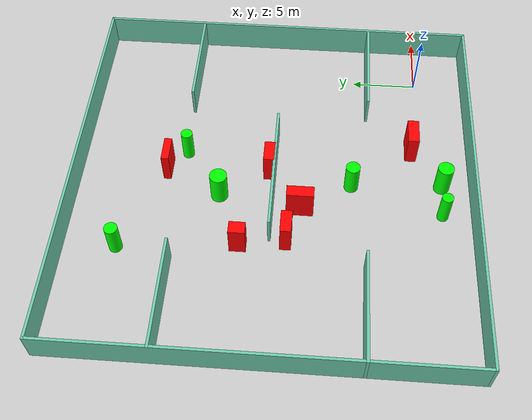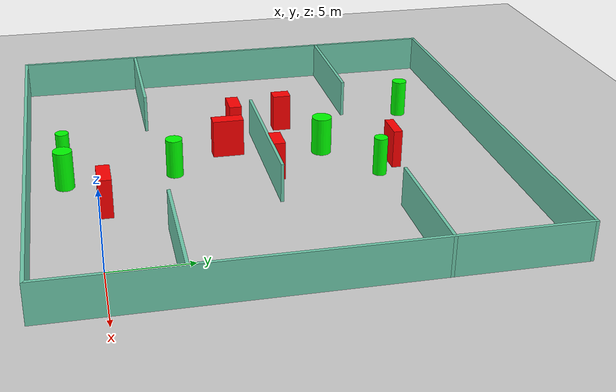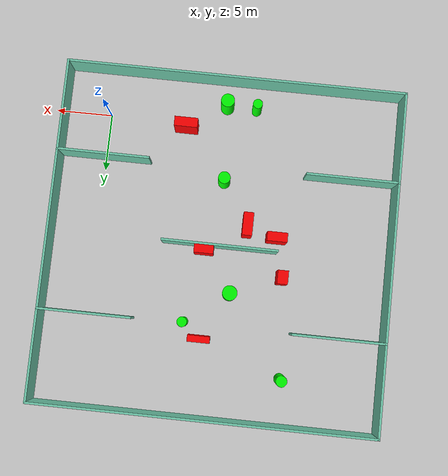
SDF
<sdf version="1.7">
 <world name="default">
  <light name="sun" type="directional">
   <pose>0 0 10 0 -0 0</pose>
   <diffuse>0.8 0.8 0.8 1</diffuse>
   <specular>0.2 0.2 0.2 1</specular>
   <attenuation>
    <range>1000</range>
    <constant>0.9</constant>
    <linear>0.01</linear>
    <quadratic>0.001</quadratic>
   </attenuation>
   <direction>-0.5 0.1 -0.9</direction>
   <spot><inner_angle>0</inner_angle><outer_angle>0</outer_angle><falloff>0</falloff></spot>
  </light>
  <model name="ground_plane">
   <static>1</static>
   <link name="link">
    <collision name="collision">
     <geometry><plane><normal>0 0 1</normal><size>100 100</size></plane></geometry>
     <surface>
      <contact><collide_bitmask>65535</collide_bitmask></contact>
      <friction><ode><mu>100</mu><mu2>50</mu2></ode></friction>
     </surface>
    </collision>
    <visual name="visual">
     <cast_shadows>0</cast_shadows>
     <geometry><plane><normal>0 0 1</normal><size>100 100</size></plane></geometry>
     <material>
      <script><uri>file://media/materials/scripts/gazebo.material</uri><name>Gazebo/Grey</name></script>
     </material>
    </visual>
   </link>
  </model>
  <gravity>0 0 -9.8</gravity>
  <magnetic_field>6e-06 2.3e-05 -4.2e-05</magnetic_field>
  <atmosphere type="adiabatic"/>
  <physics type="ode">
   <max_step_size>0.001</max_step_size>
   <real_time_factor>1</real_time_factor>
   <real_time_update_rate>1000</real_time_update_rate>
  </physics>
  <scene><ambient>0.4 0.4 0.4 1</ambient><background>0.7 0.7 0.7 1</background><shadows>1</shadows></scene>
  <spherical_coordinates>
   <surface_model>EARTH_WGS84</surface_model>
   <latitude_deg>0</latitude_deg>
   <longitude_deg>0</longitude_deg>
   <elevation>0</elevation>
   <heading_deg>0</heading_deg>
  </spherical_coordinates>
  <model name="my_base_walls">
   <link name="Wall_10">
    <collision name="Wall_10_Collision">
     <geometry><box><size>8.2 0.2 2.5</size></box></geometry>
     <pose>0 0 1.25 0 -0 0</pose>
    </collision>
    <visual name="Wall_10_Visual">
     <pose>0 0 1.25 0 -0 0</pose>
     <geometry><box><size>8.2 0.2 2.5</size></box></geometry>
     <material>
      <script><uri>file://media/materials/scripts/gazebo.material</uri><name>Gazebo/Grey</name></script>
      <ambient>0.435294 0.796078 0.67451 1</ambient>
     </material>
     <meta><layer>0</layer></meta>
    </visual>
    <pose>-11 -7 0 0 -0 0</pose>
   </link>
   <link name="Wall_12">
    <collision name="Wall_12_Collision">
     <geometry><box><size>8.2 0.2 2.5</size></box></geometry>
     <pose>0 0 1.25 0 -0 0</pose>
    </collision>
    <visual name="Wall_12_Visual">
     <pose>0 0 1.25 0 -0 0</pose>
     <geometry><box><size>8.2 0.2 2.5</size></box></geometry>
     <material>
      <script><uri>file://media/materials/scripts/gazebo.material</uri><name>Gazebo/Grey</name></script>
      <ambient>0.435294 0.796078 0.67451 1</ambient>
     </material>
     <meta><layer>0</layer></meta>
    </visual>
    <pose>-11 7 0 0 -0 0</pose>
   </link>
   <link name="Wall_14">
    <collision name="Wall_14_Collision">
     <geometry><box><size>8.2 0.2 2.5</size></box></geometry>
     <pose>0 0 1.25 0 -0 0</pose>
    </collision>
    <visual name="Wall_14_Visual">
     <pose>0 0 1.25 0 -0 0</pose>
     <geometry><box><size>8.2 0.2 2.5</size></box></geometry>
     <material>
      <script><uri>file://media/materials/scripts/gazebo.material</uri><name>Gazebo/Grey</name></script>
      <ambient>0.435294 0.796078 0.67451 1</ambient>
     </material>
     <meta><layer>0</layer></meta>
    </visual>
    <pose>11 7 0 0 -0 3.14159</pose>
   </link>
   <link name="Wall_16">
    <collision name="Wall_16_Collision">
     <geometry><box><size>10.2 0.2 2.5</size></box></geometry>
     <pose>0 0 1.25 0 -0 0</pose>
    </collision>
    <visual name="Wall_16_Visual">
     <pose>0 0 1.25 0 -0 0</pose>
     <geometry><box><size>10.2 0.2 2.5</size></box></geometry>
     <material>
      <script><uri>file://media/materials/scripts/gazebo.material</uri><name>Gazebo/Grey</name></script>
      <ambient>0.435294 0.796078 0.67451 1</ambient>
     </material>
     <meta><layer>0</layer></meta>
    </visual>
    <pose>0 0 0 0 -0 3.14159</pose>
   </link>
   <link name="Wall_2">
    <collision name="Wall_2_Collision">
     <geometry><box><size>30.2 0.2 2.5</size></box></geometry>
     <pose>0 0 1.25 0 -0 0</pose>
    </collision>
    <visual name="Wall_2_Visual">
     <pose>0 0 1.25 0 -0 0</pose>
     <geometry><box><size>30.2 0.2 2.5</size></box></geometry>
     <material>
      <script><uri>file://media/materials/scripts/gazebo.material</uri><name>Gazebo/Grey</name></script>
      <ambient>0.435294 0.796078 0.67451 1</ambient>
     </material>
     <meta><layer>0</layer></meta>
    </visual>
    <pose>0 -15 0 0 -0 3.14159</pose>
   </link>
   <link name="Wall_3">
    <collision name="Wall_3_Collision">
     <geometry><box><size>30.2 0.2 2.5</size></box></geometry>
     <pose>0 0 1.25 0 -0 0</pose>
    </collision>
    <visual name="Wall_3_Visual">
     <pose>0 0 1.25 0 -0 0</pose>
     <geometry><box><size>30.2 0.2 2.5</size></box></geometry>
     <material>
      <script><uri>file://media/materials/scripts/gazebo.material</uri><name>Gazebo/Grey</name></script>
      <ambient>0.435294 0.796078 0.67451 1</ambient>
     </material>
     <meta><layer>0</layer></meta>
    </visual>
    <pose>-15 0 0 0 -0 1.5708</pose>
   </link>
   <link name="Wall_4">
    <collision name="Wall_4_Collision">
     <geometry><box><size>30.2 0.2 2.5</size></box></geometry>
     <pose>0 0 1.25 0 -0 0</pose>
    </collision>
    <visual name="Wall_4_Visual">
     <pose>0 0 1.25 0 -0 0</pose>
     <geometry><box><size>30.2 0.2 2.5</size></box></geometry>
     <material>
      <script><uri>file://media/materials/scripts/gazebo.material</uri><name>Gazebo/Grey</name></script>
      <ambient>0.435294 0.796078 0.67451 1</ambient>
     </material>
     <meta><layer>0</layer></meta>
    </visual>
    <pose>0 15 0 0 -0 0</pose>
   </link>
   <link name="Wall_6">
    <collision name="Wall_6_Collision">
     <geometry><box><size>30.2 0.2 2.5</size></box></geometry>
     <pose>0 0 1.25 0 -0 0</pose>
    </collision>
    <visual name="Wall_6_Visual">
     <pose>0 0 1.25 0 -0 0</pose>
     <geometry><box><size>30.2 0.2 2.5</size></box></geometry>
     <material>
      <script><uri>file://media/materials/scripts/gazebo.material</uri><name>Gazebo/Grey</name></script>
      <ambient>0.435294 0.796078 0.67451 1</ambient>
     </material>
     <meta><layer>0</layer></meta>
    </visual>
    <pose>15 0 0 0 -0 1.5708</pose>
   </link>
   <link name="Wall_8">
    <collision name="Wall_8_Collision">
     <geometry><box><size>8.2 0.2 2.5</size></box></geometry>
     <pose>0 0 1.25 0 -0 0</pose>
    </collision>
    <visual name="Wall_8_Visual">
     <pose>0 0 1.25 0 -0 0</pose>
     <geometry><box><size>8.2 0.2 2.5</size></box></geometry>
     <material>
      <script><uri>file://media/materials/scripts/gazebo.material</uri><name>Gazebo/Grey</name></script>
      <ambient>0.435294 0.796078 0.67451 1</ambient>
     </material>
     <meta><layer>0</layer></meta>
    </visual>
    <pose>11 -7 0 0 -0 3.14159</pose>
   </link>
   <static>1</static>
   <pose>-11 11 0 0 -0 0</pose>
  </model>
  <model name="cylinder1">
   <static>1</static>
   <link name="link">
    <inertial>
     <mass>1</mass>
     <inertia><ixx>0.5</ixx><ixy>0</ixy><ixz>0</ixz><iyy>0.5</iyy><iyz>0</iyz><izz>1</izz></inertia>
    </inertial>
    <collision name="collision">
     <geometry><cylinder><radius>0.5330046118302146</radius><length>2.5</length></cylinder></geometry>
    </collision>
    <visual name="visual">
     <geometry><cylinder><radius>0.5330046118302146</radius><length>2.5</length></cylinder></geometry>
     <material>
      <ambient>0 1 0 1</ambient>
      <diffuse>0 1 0 1</diffuse>
      <specular>0.1 0.1 0.1 1</specular>
      <emissive>0 0 0 0</emissive>
     </material>
    </visual>
   </link>
   <pose>-10.80874158409543 5.10599310241011 1.25 0 0 0</pose>
  </model>
  <model name="cylinder2">
   <static>1</static>
   <link name="link">
    <inertial>
     <mass>1</mass>
     <inertia><ixx>0.5</ixx><ixy>0</ixy><ixz>0</ixz><iyy>0.5</iyy><iyz>0</iyz><izz>1</izz></inertia>
    </inertial>
    <collision name="collision">
     <geometry><cylinder><radius>0.6483282768910473</radius><length>2.5</length></cylinder></geometry>
    </collision>
    <visual name="visual">
     <geometry><cylinder><radius>0.6483282768910473</radius><length>2.5</length></cylinder></geometry>
     <material>
      <ambient>0 1 0 1</ambient>
      <diffuse>0 1 0 1</diffuse>
      <specular>0.1 0.1 0.1 1</specular>
      <emissive>0 0 0 0</emissive>
     </material>
    </visual>
   </link>
   <pose>-12.293442037497137 15.032434671782568 1.25 0 0 0</pose>
  </model>
  <model name="cylinder3">
   <static>1</static>
   <link name="link">
    <inertial>
     <mass>1</mass>
     <inertia><ixx>0.5</ixx><ixy>0</ixy><ixz>0</ixz><iyy>0.5</iyy><iyz>0</iyz><izz>1</izz></inertia>
    </inertial>
    <collision name="collision">
     <geometry><cylinder><radius>0.5957448532588556</radius><length>2.5</length></cylinder></geometry>
    </collision>
    <visual name="visual">
     <geometry><cylinder><radius>0.5957448532588556</radius><length>2.5</length></cylinder></geometry>
     <material>
      <ambient>0 1 0 1</ambient>
      <diffuse>0 1 0 1</diffuse>
      <specular>0.1 0.1 0.1 1</specular>
      <emissive>0 0 0 0</emissive>
     </material>
    </visual>
   </link>
   <pose>-10.420241439349935 -1.7807483664681354 1.25 0 0 0</pose>
  </model>
  <model name="cylinder4">
   <static>1</static>
   <link name="link">
    <inertial>
     <mass>1</mass>
     <inertia><ixx>0.5</ixx><ixy>0</ixy><ixz>0</ixz><iyy>0.5</iyy><iyz>0</iyz><izz>1</izz></inertia>
    </inertial>
    <collision name="collision">
     <geometry><cylinder><radius>0.4241396803870363</radius><length>2.5</length></cylinder></geometry>
    </collision>
    <visual name="visual">
     <geometry><cylinder><radius>0.4241396803870363</radius><length>2.5</length></cylinder></geometry>
     <material>
      <ambient>0 1 0 1</ambient>
      <diffuse>0 1 0 1</diffuse>
      <specular>0.1 0.1 0.1 1</specular>
      <emissive>0 0 0 0</emissive>
     </material>
    </visual>
   </link>
   <pose>-13.076806366660467 -1.7379852954714896 1.25 0 0 0</pose>
  </model>
  <model name="cylinder5">
   <static>1</static>
   <link name="link">
    <inertial>
     <mass>1</mass>
     <inertia><ixx>0.5</ixx><ixy>0</ixy><ixz>0</ixz><iyy>0.5</iyy><iyz>0</iyz><izz>1</izz></inertia>
    </inertial>
    <collision name="collision">
     <geometry><cylinder><radius>0.43812108618806594</radius><length>2.5</length></cylinder></geometry>
    </collision>
    <visual name="visual">
     <geometry><cylinder><radius>0.43812108618806594</radius><length>2.5</length></cylinder></geometry>
     <material>
      <ambient>0 1 0 1</ambient>
      <diffuse>0 1 0 1</diffuse>
      <specular>0.1 0.1 0.1 1</specular>
      <emissive>0 0 0 0</emissive>
     </material>
    </visual>
   </link>
   <pose>-8.464422443862365 17.895808608257152 1.25 0 0 0</pose>
  </model>
  <model name="cylinder6">
   <static>1</static>
   <link name="link">
    <inertial>
     <mass>1</mass>
     <inertia><ixx>0.5</ixx><ixy>0</ixy><ixz>0</ixz><iyy>0.5</iyy><iyz>0</iyz><izz>1</izz></inertia>
    </inertial>
    <collision name="collision">
     <geometry><cylinder><radius>0.4889780786579109</radius><length>2.5</length></cylinder></geometry>
    </collision>
    <visual name="visual">
     <geometry><cylinder><radius>0.4889780786579109</radius><length>2.5</length></cylinder></geometry>
     <material>
      <ambient>0 1 0 1</ambient>
      <diffuse>0 1 0 1</diffuse>
      <specular>0.1 0.1 0.1 1</specular>
      <emissive>0 0 0 0</emissive>
     </material>
    </visual>
   </link>
   <pose>-17.401318296523606 22.025062755660915 1.25 0 0 0</pose>
  </model>
  <model name="box1">
   <static>1</static>
   <link name="link">
    <inertial>
     <mass>1</mass>
     <inertia><ixx>0.083</ixx><ixy>0</ixy><ixz>0</ixz><iyy>0.083</iyy><iyz>0</iyz><izz>0.083</izz></inertia>
    </inertial>
    <collision name="collision">
     <geometry><box><size>1.9548219187327391 0.5744975667825248 2.5</size></box></geometry>
    </collision>
    <visual name="visual">
     <geometry><box><size>1.9548219187327391 0.5744975667825248 2.5</size></box></geometry>
     <material>
      <ambient>1 0 0 1</ambient>
      <diffuse>1 0 0 1</diffuse>
      <specular>0.1 0.1 0.1 1</specular>
      <emissive>0 0 0 0</emissive>
     </material>
    </visual>
    <sensor name="my_contact" type="contact">
     <contact><collision>box_collision</collision><topic>__default_topic__</topic></contact>
    </sensor>
   </link>
   <pose>-10.022821707547852 19.21169117908337 1.25 0 0 0</pose>
  </model>
  <model name="box2">
   <static>1</static>
   <link name="link">
    <inertial>
     <mass>1</mass>
     <inertia><ixx>0.083</ixx><ixy>0</ixy><ixz>0</ixz><iyy>0.083</iyy><iyz>0</iyz><izz>0.083</izz></inertia>
    </inertial>
    <collision name="collision">
     <geometry><box><size>1.7769693646358973 0.8202920086347807 2.5</size></box></geometry>
    </collision>
    <visual name="visual">
     <geometry><box><size>1.7769693646358973 0.8202920086347807 2.5</size></box></geometry>
     <material>
      <ambient>1 0 0 1</ambient>
      <diffuse>1 0 0 1</diffuse>
      <specular>0.1 0.1 0.1 1</specular>
      <emissive>0 0 0 0</emissive>
     </material>
    </visual>
    <sensor name="my_contact" type="contact">
     <contact><collision>box_collision</collision><topic>__default_topic__</topic></contact>
    </sensor>
   </link>
   <pose>-15.900821667017858 9.780409914515648 1.25 0 0 0</pose>
  </model>
  <model name="box3">
   <static>1</static>
   <link name="link">
    <inertial>
     <mass>1</mass>
     <inertia><ixx>0.083</ixx><ixy>0</ixy><ixz>0</ixz><iyy>0.083</iyy><iyz>0</iyz><izz>0.083</izz></inertia>
    </inertial>
    <collision name="collision">
     <geometry><box><size>2.057779145248142 0.8394501443589271 2.5</size></box></geometry>
    </collision>
    <visual name="visual">
     <geometry><box><size>2.057779145248142 0.8394501443589271 2.5</size></box></geometry>
     <material>
      <ambient>1 0 0 1</ambient>
      <diffuse>1 0 0 1</diffuse>
      <specular>0.1 0.1 0.1 1</specular>
      <emissive>0 0 0 0</emissive>
     </material>
    </visual>
    <sensor name="my_contact" type="contact">
     <contact><collision>box_collision</collision><topic>__default_topic__</topic></contact>
    </sensor>
   </link>
   <pose>-6.954146453245695 0.5064910691540914 1.25 0 0 0</pose>
  </model>
  <model name="box4">
   <static>1</static>
   <link name="link">
    <inertial>
     <mass>1</mass>
     <inertia><ixx>0.083</ixx><ixy>0</ixy><ixz>0</ixz><iyy>0.083</iyy><iyz>0</iyz><izz>0.083</izz></inertia>
    </inertial>
    <collision name="collision">
     <geometry><box><size>1.6980759935853305 0.8142562691203474 2.5</size></box></geometry>
    </collision>
    <visual name="visual">
     <geometry><box><size>1.6980759935853305 0.8142562691203474 2.5</size></box></geometry>
     <material>
      <ambient>1 0 0 1</ambient>
      <diffuse>1 0 0 1</diffuse>
      <specular>0.1 0.1 0.1 1</specular>
      <emissive>0 0 0 0</emissive>
     </material>
    </visual>
    <sensor name="my_contact" type="contact">
     <contact><collision>box_collision</collision><topic>__default_topic__</topic></contact>
    </sensor>
   </link>
   <pose>-9.671232899597811 11.428785393863603 1.25 0 0 0</pose>
  </model>
  <model name="box5">
   <static>1</static>
   <link name="link">
    <inertial>
     <mass>1</mass>
     <inertia><ixx>0.083</ixx><ixy>0</ixy><ixz>0</ixz><iyy>0.083</iyy><iyz>0</iyz><izz>0.083</izz></inertia>
    </inertial>
    <collision name="collision">
     <geometry><box><size>0.9311090151983712 1.1972999279280683 2.5</size></box></geometry>
    </collision>
    <visual name="visual">
     <geometry><box><size>0.9311090151983712 1.1972999279280683 2.5</size></box></geometry>
     <material>
      <ambient>1 0 0 1</ambient>
      <diffuse>1 0 0 1</diffuse>
      <specular>0.1 0.1 0.1 1</specular>
      <emissive>0 0 0 0</emissive>
     </material>
    </visual>
    <sensor name="my_contact" type="contact">
     <contact><collision>box_collision</collision><topic>__default_topic__</topic></contact>
    </sensor>
   </link>
   <pose>-16.696178827587367 13.215503473488788 1.25 0 0 0</pose>
  </model>
  <model name="box6">
   <static>1</static>
   <link name="link">
    <inertial>
     <mass>1</mass>
     <inertia><ixx>0.083</ixx><ixy>0</ixy><ixz>0</ixz><iyy>0.083</iyy><iyz>0</iyz><izz>0.083</izz></inertia>
    </inertial>
    <collision name="collision">
     <geometry><box><size>0.8813726678581675 2.0231881134611216 2.5</size></box></geometry>
    </collision>
    <visual name="visual">
     <geometry><box><size>0.8813726678581675 2.0231881134611216 2.5</size></box></geometry>
     <material>
      <ambient>1 0 0 1</ambient>
      <diffuse>1 0 0 1</diffuse>
      <specular>0.1 0.1 0.1 1</specular>
      <emissive>0 0 0 0</emissive>
     </material>
    </visual>
    <sensor name="my_contact" type="contact">
     <contact><collision>box_collision</collision><topic>__default_topic__</topic></contact>
    </sensor>
   </link>
   <pose>-13.258178537149716 8.908221801326032 1.25 0 0 0</pose>
  </model>
 </world>
</sdf>
